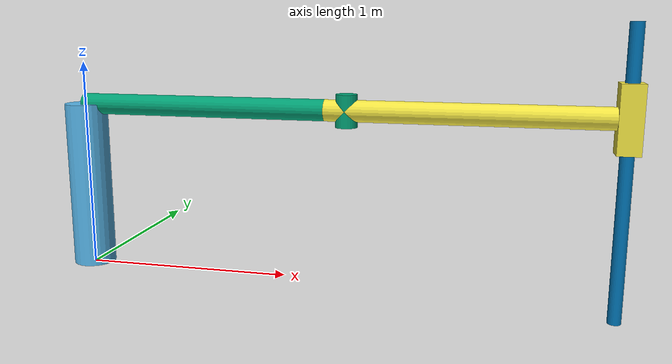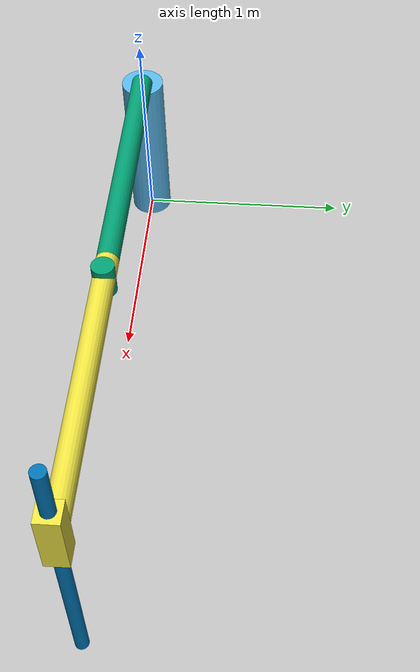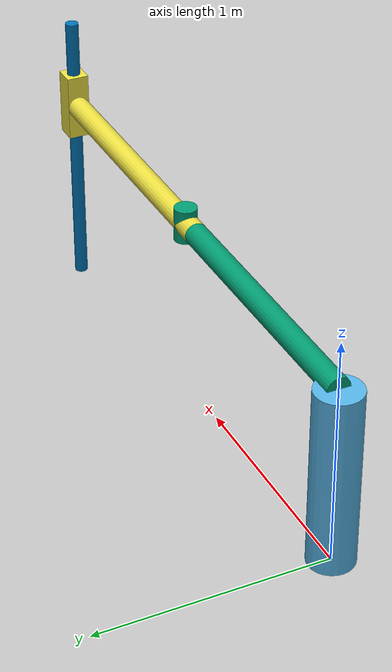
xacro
<?xml version="1.0"?>
<robot name="scara_robot">

  <link name="world"/> <!--fixing the base link to the global origin here-->
  <joint name="world_to_base" type="fixed">
    <parent link="world"/>
    <child link="base_link"/>
    <origin xyz="0 0 0"/>
  </joint>

  <link name="base_link"><!-- Defining base link here -->
    <visual>
      <geometry>
        <cylinder radius="0.1" length="0.8"/>
      </geometry>
      <origin xyz="0 0 0.4"/>
    </visual>
    <collision>
      <geometry>
        <cylinder radius="0.1" length="0.8"/>
      </geometry>
      <origin xyz="0 0 0.4"/>
    </collision>
    <inertial>
      <mass value="1.0"/>
      <inertia ixx="0.01" iyy="0.01" izz="0.01"
               ixy="0" ixz="0" iyz="0"/> <!--using some junk values so that gazebo doens't cause issues -->
    </inertial>
  </link>

  <joint name="joint1" type="revolute"> <!-- Joint 1 that connects base to link1 -->
    <parent link="base_link"/>
    <child link="link1"/>
    <origin xyz="0 0 0.8"/> <!--definig link1 at 0.8m from the  base about z-->
    <axis xyz="0 0 1"/>     <!--defining j1 along z axis-->
    <limit lower="-3.14" upper="3.14" effort="100" velocity="1.0"/> <!-- making sure the joint goes from -pi to pi. dummy values for effort and velocity-->
  </joint>

  <!-- Link 1 -->
  <link name="link1">
    <visual>
        <geometry>    <!-- adding a joint cylinder that makes it look connected. It is only visual-->
            <cylinder radius="0.05" length="0.15"/>
        </geometry>
        <origin xyz="1.3 0 0"/>
    </visual>

    <!-- Arm cylinder -->
    <visual>
      <geometry>
        <cylinder radius="0.05" length="1.2"/>
      </geometry>
      <origin xyz="0.6 0 0" rpy="0 1.5708 0"/>
    </visual>

    <collision>
      <geometry>
        <cylinder radius="0.05" length="1.2"/>
      </geometry>
      <origin xyz="0.6 0 0" rpy="0 1.5708 0"/>
    </collision>
    <inertial>
      <mass value="1.0"/>
      <inertia ixx="0.01" iyy="0.01" izz="0.01"
               ixy="0" ixz="0" iyz="0"/>
    </inertial>
  </link>

  <!-- Link 2 -->
  <link name="link2">

    <!-- Joint3 cylinder -->
    <visual>
        <geometry>
            <box size="0.1 0.1 0.3"/>
        </geometry>
        <origin xyz="1.3 0 0"/>
    </visual>

    <!-- Arm cylinder -->
    <visual>
      <geometry>
        <cylinder radius="0.05" length="1.3"/>
      </geometry>
      <origin xyz="0.65 0 0" rpy="0 1.5708 0"/>
    </visual>
    <collision>
      <geometry>
        <cylinder radius="0.05" length="1.3"/>
      </geometry>
      <origin xyz="0.65 0 0" rpy="0 1.5708 0"/>
    </collision>
    <inertial>
      <mass value="1.0"/>
      <inertia ixx="0.01" iyy="0.01" izz="0.01"
               ixy="0" ixz="0" iyz="0"/>
    </inertial>
  </link>

  <!-- Joint 2 -->
  <joint name="joint2" type="revolute">
    <parent link="link1"/>
    <child link="link2"/>
    <origin xyz="1.2 0 0"/>
    <axis xyz="0 0 1"/>
    <limit lower="-3.14" upper="3.14" effort="100" velocity="1.0"/>
  </joint>

  <!-- Link 3-->
  <link name="link3">
    <visual>
      <geometry>
        <cylinder radius="0.03" length="1.3"/>
      </geometry>
      <origin xyz="0 0 -0.25"/>
    </visual>
    <collision>
      <geometry>
        <cylinder radius="0.03" length="1.3"/>
      </geometry>
      <origin xyz="0 0 -0.25"/>
    </collision>
    <inertial>
      <mass value="0.5"/>
      <inertia ixx="0.01" iyy="0.01" izz="0.01"
               ixy="0" ixz="0" iyz="0"/>
    </inertial>
  </link>

  <!-- Joint 3 -->
  <joint name="joint3" type="prismatic">
    <parent link="link2"/>
    <child link="link3"/>
    <origin xyz="1.3 0 0"/>
    <axis xyz="0 0 1"/>
    <limit lower="0" upper="3.0" effort="100" velocity="1.0"/>
  </joint>

  <!-- ros2_control interface -->
  <ros2_control name="scara_system" type="system">
    <hardware>
      <plugin>gazebo_ros2_control/GazeboSystem</plugin>
    </hardware>

    <joint name="joint1">
      <command_interface name="position">
        <param name="min">-3.14</param>
        <param name="max">3.14</param>
      </command_interface>
      <state_interface name="position"/>
      <state_interface name="velocity"/>
    </joint>

    <joint name="joint2">
      <command_interface name="position">
        <param name="min">-3.14</param>
        <param name="max">3.14</param>
      </command_interface>
      <state_interface name="position"/>
      <state_interface name="velocity"/>
    </joint>

    <joint name="joint3">
      <command_interface name="position">
        <param name="min">0.0</param>
        <param name="max">3.0</param>
      </command_interface>
      <state_interface name="position"/>
      <state_interface name="velocity"/>
    </joint>

  </ros2_control>

  <!-- Gazebo ros2_control plugin -->
  <gazebo>
    <plugin name="gazebo_ros2_control"
            filename="libgazebo_ros2_control.so">
      <parameters>/home/dkndaie/ros2_ws/install/scara_robot/share/scara_robot/config/scara_controllers.yaml</parameters>
    </plugin>
  </gazebo>

</robot>
